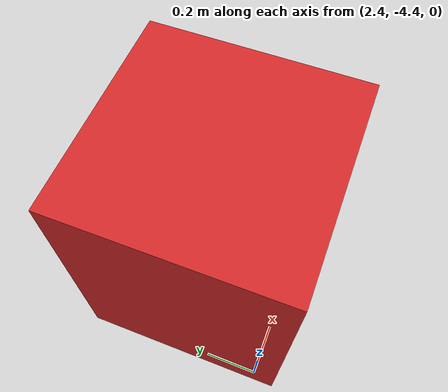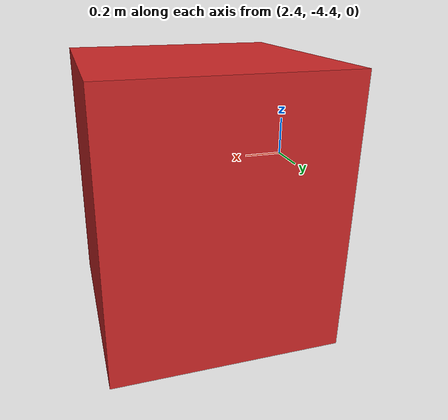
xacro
<?xml version="1.0"?>

<robot name="simple_box">
  <link name="my_box">
    <inertial>
      <origin xyz="3 -4 0" />
      <mass value="1.0" />
      <inertia ixx="1.0" ixy="0.0" ixz="0.0" iyy="100.0" iyz="0.0" izz="1.0" />
     </inertial>

     <visual>
       <origin xyz="3 -4 0"/>
       <geometry>
         <box size="1.0 1.0 1.2" />
       </geometry>
     </visual>

     <collision>
       <origin xyz="3 -4 0"/>
       <geometry>
         <box size="1.0 1.0 1.2" />
       </geometry>
     </collision>
  </link>

  <gazebo reference="my_box">
    <material>Gazebo/Red</material>
  </gazebo>
</robot>
